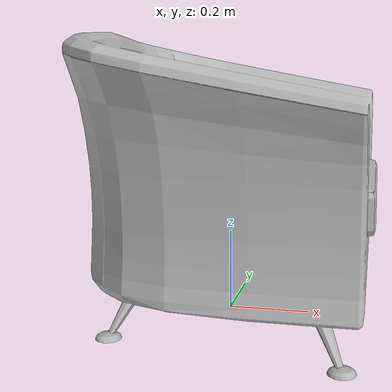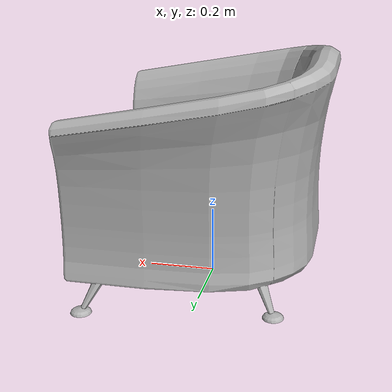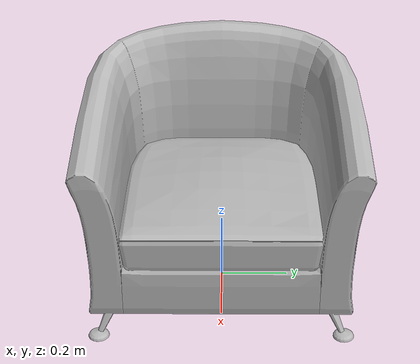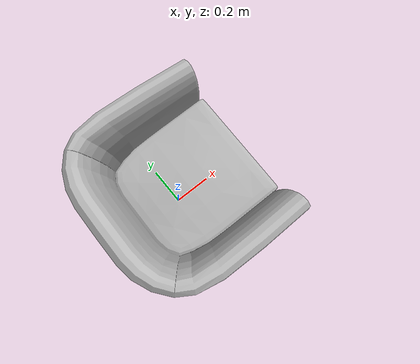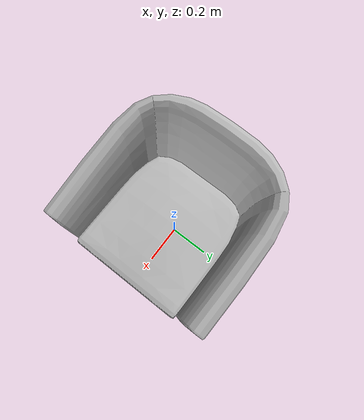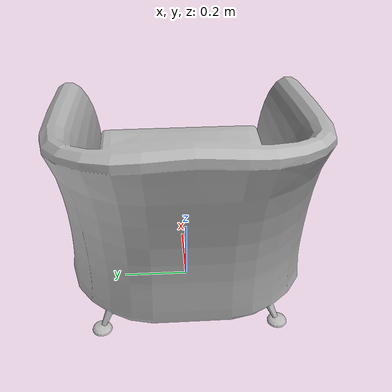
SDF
<?xml version='1.0'?>
<sdf version='1.4'>
  <model name='s__514'>
    <pose>0 0 0 0 0 0</pose>
    <static>true</static>
    <link name='link'>
      <collision name='collision'>
        <pose>0 0 0 0 0 0</pose>
        <geometry>
          <box>
            <size>0.72 0.8 2</size>
          </box>
        </geometry>
      </collision>
      <visual name='visual'>
        <pose>0 0 0 0 0 0</pose>
        <geometry>
          <mesh><uri>model://s__514/s__514.dae</uri></mesh>
        </geometry>
      </visual>
    </link>
  </model>
</sdf>
